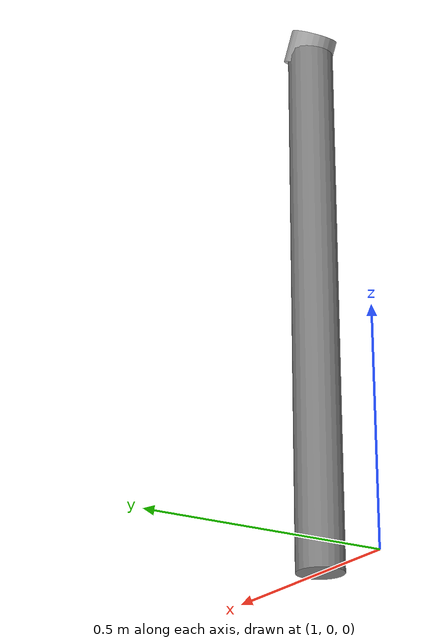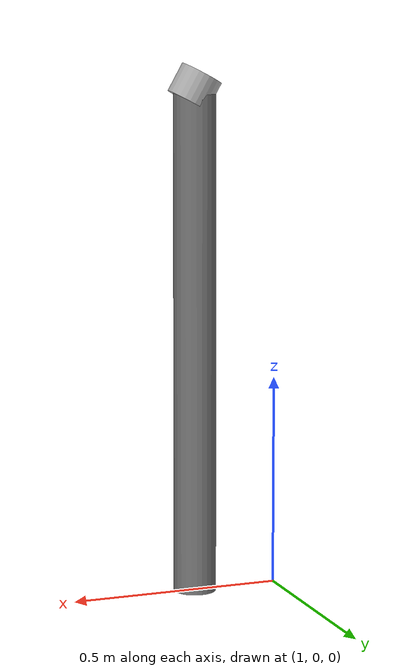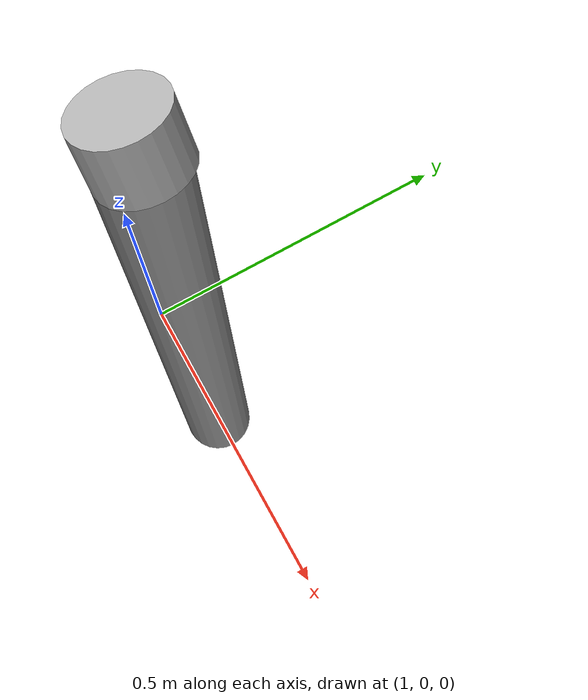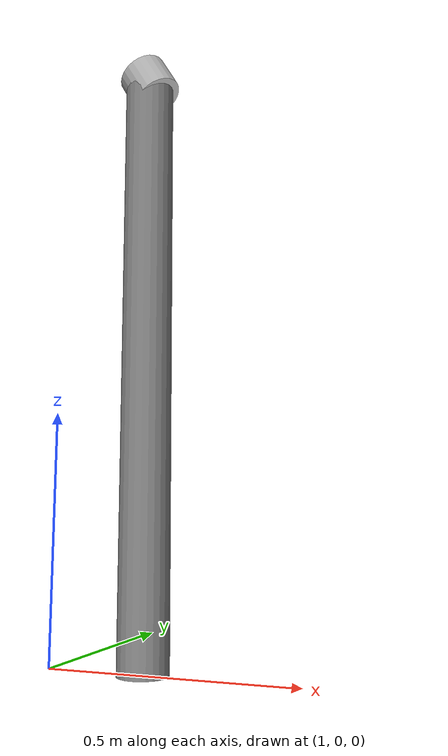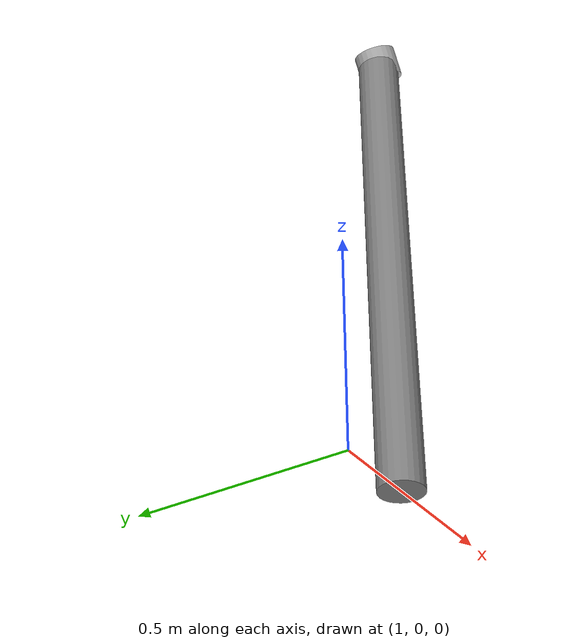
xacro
<?xml version="1.0"?>
<robot xmlns:xacro="http://www.ros.org/wiki/xacro" name="hesai_xt16">

  <xacro:property name="pole_x" value="1.2" />
  <xacro:property name="pole_y" value="0.0" />
  <xacro:property name="pole_z" value="1.2" />
  <xacro:property name="tilt_angle" value="0.52" />

  <link name="world"/>

  <link name="lidar_pole">
    <visual>
      <geometry><cylinder radius="0.05" length="${pole_z}"/></geometry>
      <origin xyz="0 0 ${pole_z/2}" rpy="0 0 0"/>
      <material name="gray"><color rgba="0.5 0.5 0.5 1"/></material>
    </visual>
    <collision>
      <geometry><cylinder radius="0.05" length="${pole_z}"/></geometry>
      <origin xyz="0 0 ${pole_z/2}" rpy="0 0 0"/>
    </collision>
    <inertial>
      <mass value="5.0"/>
      <origin xyz="0 0 ${pole_z/2}" rpy="0 0 0"/>
      <inertia ixx="0.1" ixy="0" ixz="0" iyy="0.1" iyz="0" izz="0.1"/>
    </inertial>
  </link>

  <joint name="pole_joint" type="fixed">
    <parent link="world"/>
    <child link="lidar_pole"/>
    <origin xyz="${pole_x} ${pole_y} 0" rpy="0 0 3.14159"/> </joint>

  <joint name="lidar_joint" type="fixed">
    <parent link="lidar_pole"/>
    <child link="hesai_base_link"/>
    <origin xyz="0 0 ${pole_z}" rpy="0 ${tilt_angle} 0"/>
  </joint>

  <link name="hesai_base_link">
    <visual>
      <geometry><cylinder radius="0.0515" length="0.0717"/></geometry>
      <material name="silver"><color rgba="0.7 0.7 0.7 1.0"/></material>
    </visual>
  </link>

  <joint name="sensor_joint" type="fixed">
    <parent link="hesai_base_link"/>
    <child link="hesai_lidar"/>
    <origin xyz="0 0 0.035" rpy="0 0 0"/>
  </joint>
  <link name="hesai_lidar"/>

  <gazebo reference="hesai_lidar">
    <sensor type="ray" name="hesai_xt16_sensor">
      <pose>0 0 0 0 0 0</pose>
      <visualize>false</visualize>
      <update_rate>10</update_rate>
      <ray>
        <scan>
          <horizontal>
            <samples>360</samples><resolution>1</resolution>
            <min_angle>-3.14159</min_angle><max_angle>3.14159</max_angle>
          </horizontal>
          <vertical>
            <samples>16</samples><resolution>1</resolution>
            <min_angle>-0.2618</min_angle><max_angle>0.2618</max_angle>
          </vertical>
        </scan>
        <range><min>0.2</min><max>100.0</max></range> <noise><type>gaussian</type><mean>0.0</mean><stddev>0.005</stddev></noise>
      </ray>
      <plugin name="gazebo_ros_laser_controller" filename="libgazebo_ros_ray_sensor.so">
        <ros><remapping>~/out:=/hesai/pandar</remapping></ros>
        <output_type>sensor_msgs/PointCloud2</output_type>
        <frame_name>hesai_lidar</frame_name>
      </plugin>
    </sensor>
  </gazebo>
</robot>
